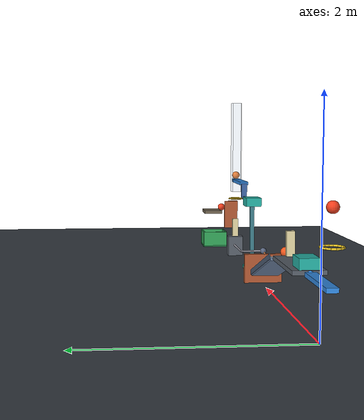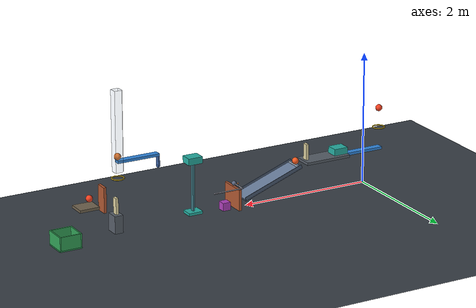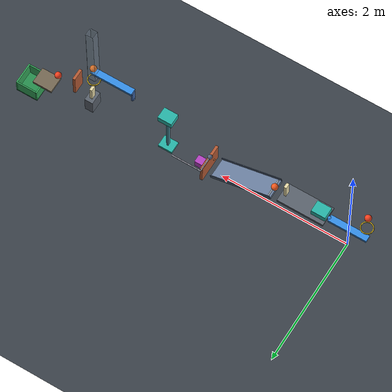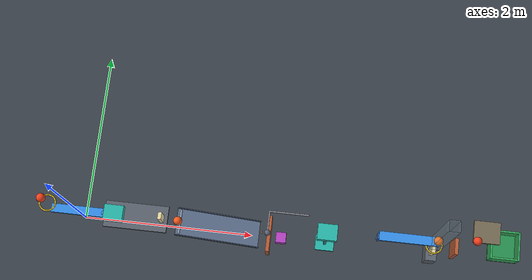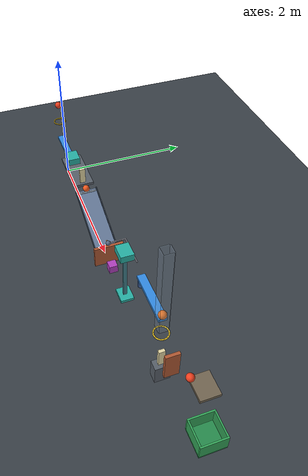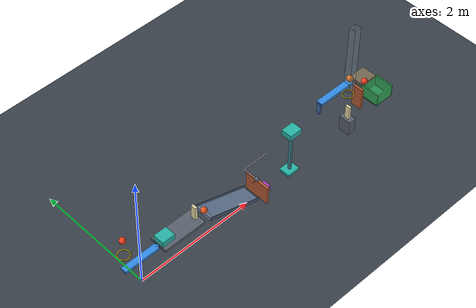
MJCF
<mujoco model="revised_gravity_chain">
  <compiler angle="degree" autolimits="true"/>
  <option timestep="0.002" gravity="0 0 -9.81" integrator="implicitfast" iterations="100"/>
  <size njmax="3000" nconmax="800"/>

  <!-- The start keyframe uses default positions and zero velocities. -->
  <!-- Contact damping ratio 0.716 approximates restitution 0.04. -->
  <!-- Constant assist torques are initially restrained by gravity or contact. -->

  <worldbody>
    <light name="main_light" pos="2 -3 6" dir="0 0 -1" diffuse="0.8 0.8 0.8"/>
    <camera name="overview" pos="2.5 -7 3.2" xyaxes="1 0 0 0 0.35 0.94"/>
    <geom name="floor" type="plane" size="8 4 0.1" friction="0.72 0.005 0.0001" solref="0.008 0.716" solimp="0.95 0.99 0.001" rgba="0.22 0.25 0.28 1"/>

    <body name="ball1" pos="-0.27 0 1.12">
      <freejoint name="ball1_free"/>
      <geom name="ball1_geom" type="sphere" size="0.05" mass="0.20" friction="0.72 0.005 0.0001" solref="0.008 0.716" solimp="0.95 0.99 0.001" rgba="0.95 0.25 0.12 1"/>
    </body>

    <body name="ring1" pos="-0.27 0 0.82">
      <geom name="ring1_00" type="capsule" fromto="0.09 0 0 0.083149 0.034442 0" size="0.008270675" friction="0.72 0.005 0.0001" solref="0.008 0.716" rgba="0.95 0.8 0.15 1"/>
      <geom name="ring1_01" type="capsule" fromto="0.083149 0.034442 0 0.063640 0.063640 0" size="0.008270675" friction="0.72 0.005 0.0001" solref="0.008 0.716" rgba="0.95 0.8 0.15 1"/>
      <geom name="ring1_02" type="capsule" fromto="0.063640 0.063640 0 0.034442 0.083149 0" size="0.008270675" friction="0.72 0.005 0.0001" solref="0.008 0.716" rgba="0.95 0.8 0.15 1"/>
      <geom name="ring1_03" type="capsule" fromto="0.034442 0.083149 0 0 0.09 0" size="0.008270675" friction="0.72 0.005 0.0001" solref="0.008 0.716" rgba="0.95 0.8 0.15 1"/>
      <geom name="ring1_04" type="capsule" fromto="0 0.09 0 -0.034442 0.083149 0" size="0.008270675" friction="0.72 0.005 0.0001" solref="0.008 0.716" rgba="0.95 0.8 0.15 1"/>
      <geom name="ring1_05" type="capsule" fromto="-0.034442 0.083149 0 -0.063640 0.063640 0" size="0.008270675" friction="0.72 0.005 0.0001" solref="0.008 0.716" rgba="0.95 0.8 0.15 1"/>
      <geom name="ring1_06" type="capsule" fromto="-0.063640 0.063640 0 -0.083149 0.034442 0" size="0.008270675" friction="0.72 0.005 0.0001" solref="0.008 0.716" rgba="0.95 0.8 0.15 1"/>
      <geom name="ring1_07" type="capsule" fromto="-0.083149 0.034442 0 -0.09 0 0" size="0.008270675" friction="0.72 0.005 0.0001" solref="0.008 0.716" rgba="0.95 0.8 0.15 1"/>
      <geom name="ring1_08" type="capsule" fromto="-0.09 0 0 -0.083149 -0.034442 0" size="0.008270675" friction="0.72 0.005 0.0001" solref="0.008 0.716" rgba="0.95 0.8 0.15 1"/>
      <geom name="ring1_09" type="capsule" fromto="-0.083149 -0.034442 0 -0.063640 -0.063640 0" size="0.008270675" friction="0.72 0.005 0.0001" solref="0.008 0.716" rgba="0.95 0.8 0.15 1"/>
      <geom name="ring1_10" type="capsule" fromto="-0.063640 -0.063640 0 -0.034442 -0.083149 0" size="0.008270675" friction="0.72 0.005 0.0001" solref="0.008 0.716" rgba="0.95 0.8 0.15 1"/>
      <geom name="ring1_11" type="capsule" fromto="-0.034442 -0.083149 0 0 -0.09 0" size="0.008270675" friction="0.72 0.005 0.0001" solref="0.008 0.716" rgba="0.95 0.8 0.15 1"/>
      <geom name="ring1_12" type="capsule" fromto="0 -0.09 0 0.034442 -0.083149 0" size="0.008270675" friction="0.72 0.005 0.0001" solref="0.008 0.716" rgba="0.95 0.8 0.15 1"/>
      <geom name="ring1_13" type="capsule" fromto="0.034442 -0.083149 0 0.063640 -0.063640 0" size="0.008270675" friction="0.72 0.005 0.0001" solref="0.008 0.716" rgba="0.95 0.8 0.15 1"/>
      <geom name="ring1_14" type="capsule" fromto="0.063640 -0.063640 0 0.083149 -0.034442 0" size="0.008270675" friction="0.72 0.005 0.0001" solref="0.008 0.716" rgba="0.95 0.8 0.15 1"/>
      <geom name="ring1_15" type="capsule" fromto="0.083149 -0.034442 0 0.09 0 0" size="0.008270675" friction="0.72 0.005 0.0001" solref="0.008 0.716" rgba="0.95 0.8 0.15 1"/>
    </body>

    <body name="lever1" pos="0 0 0.50">
      <joint name="lever1_hinge" type="hinge" axis="0 -1 0" range="0 45" damping="0.04" solreflimit="0.004 1"/>
      <geom name="lever1_beam" type="box" size="0.30 0.05 0.02" mass="0.48" friction="0.72 0.005 0.0001" solref="0.008 0.716" rgba="0.2 0.55 0.9 1"/>
      <geom name="lever1_striker" type="sphere" pos="0.30 0 0" size="0.03" mass="0.02" friction="0.72 0.005 0.0001" solref="0.008 0.716" rgba="0.2 0.55 0.9 1"/>
    </body>

    <body name="stage1_support" pos="0.6825 0 0.508">
      <geom name="stage1_support_geom" type="box" size="0.3625 0.15 0.02" friction="0.72 0.005 0.0001" solref="0.008 0.716" rgba="0.35 0.38 0.42 1"/>
    </body>

    <body name="cart1" pos="0.435 0 0.58">
      <joint name="cart1_slide" type="slide" axis="1 0 0" range="0 0.85" damping="0.20"/>
      <geom name="cart1_geom" type="box" size="0.11 0.09 0.05" mass="0.50" friction="0.72 0.005 0.0001" solref="0.008 0.716" rgba="0.15 0.7 0.65 1"/>
    </body>

    <body name="domino1" pos="0.985 0 0.65">
      <freejoint name="domino1_free"/>
      <geom name="domino1_geom" type="box" size="0.02 0.04 0.12" mass="0.25" friction="0.72 0.005 0.0001" solref="0.008 0.716" rgba="0.9 0.85 0.65 1"/>
    </body>

    <body name="ball2" pos="1.164985 0 0.539">
      <freejoint name="ball2_free"/>
      <geom name="ball2_geom" type="sphere" size="0.05" mass="0.20" friction="0.72 0.005 0.0001" solref="0.008 0.716" solimp="0.95 0.99 0.001" rgba="0.95 0.35 0.12 1"/>
    </body>

    <body name="ramp1" pos="1.6126 0 0.306915" quat="0.984807753 0 0.173648178 0">
      <geom name="ramp1_deck" type="box" size="0.50 0.15 0.015" friction="0.72 0.005 0.0001" solref="0.008 0.716" rgba="0.4 0.48 0.6 1"/>
      <geom name="ramp1_release_bump" type="capsule" fromto="-0.46 -0.13 0.019 -0.46 0.13 0.019" size="0.012" friction="0.72 0.005 0.0001" solref="0.008 0.716" rgba="0.6 0.65 0.7 1"/>
      <geom name="ramp1_side_left" type="box" pos="0 -0.155 0.025" size="0.50 0.005 0.025" friction="0.72 0.005 0.0001" solref="0.008 0.716" rgba="0.3 0.36 0.45 1"/>
      <geom name="ramp1_side_right" type="box" pos="0 0.155 0.025" size="0.50 0.005 0.025" friction="0.72 0.005 0.0001" solref="0.008 0.716" rgba="0.3 0.36 0.45 1"/>
    </body>

    <body name="door1" pos="2.2076 0 0.02">
      <joint name="door1_hinge" type="hinge" axis="0 1 0" range="0 70" damping="0.04" solreflimit="0.004 1"/>
      <geom name="door1_panel" type="box" pos="0 0 0.16" size="0.02 0.21 0.16" mass="0.44" friction="0.72 0.005 0.0001" solref="0.008 0.716" rgba="0.7 0.35 0.2 1"/>
      <geom name="door1_bob_striker" type="sphere" pos="-0.08 0 0.34" size="0.012" mass="0.01" friction="0.72 0.005 0.0001" solref="0.008 0.716" rgba="0.75 0.45 0.25 1"/>
    </body>

    <!-- Offset shaft avoids the door/shaft interlock; the bob remains in the interaction plane. -->
    <body name="pendulum1" pos="2.6576 0 0.375">
      <joint name="pendulum1_hinge" type="hinge" axis="0 -1 0" range="0 38" damping="0.04" solreflimit="0.004 1"/>
      <geom name="pendulum1_rod" type="capsule" fromto="-0.009 0.25 0 -0.465 0.25 0" size="0.009" mass="0.04" friction="0.72 0.005 0.0001" solref="0.008 0.716" rgba="0.65 0.65 0.7 1"/>
      <geom name="pendulum1_end_connector" type="capsule" fromto="-0.465 0 0 -0.465 0.25 0" size="0.009" mass="0.01" friction="0.72 0.005 0.0001" solref="0.008 0.716" rgba="0.65 0.65 0.7 1"/>
      <geom name="pendulum1_bob" type="sphere" pos="-0.465 0 0" size="0.035" mass="0.30" friction="0.72 0.005 0.0001" solref="0.008 0.716" rgba="0.35 0.4 0.5 1"/>
    </body>

    <body name="block1" pos="2.3476 0 0.0605">
      <freejoint name="block1_free"/>
      <geom name="block1_geom" type="box" size="0.06 0.06 0.06" mass="0.35" friction="0.72 0.005 0.0001" solref="0.008 0.716" rgba="0.7 0.25 0.75 1"/>
    </body>

    <!-- The light mast connects the elevated carriage to its floor-level impact toe. -->
    <body name="cart2" pos="2.8676 0 0.86">
      <joint name="cart2_slide" type="slide" axis="1 0 0" range="0 0.90" damping="0.20"/>
      <geom name="cart2_carriage" type="box" size="0.11 0.09 0.05" mass="0.45" friction="0.72 0.005 0.0001" solref="0.008 0.716" rgba="0.15 0.7 0.65 1"/>
      <geom name="cart2_mast" type="box" pos="0 0 -0.415" size="0.015 0.025 0.365" mass="0.04" friction="0.72 0.005 0.0001" solref="0.008 0.716" rgba="0.25 0.5 0.55 1"/>
      <geom name="cart2_toe" type="box" pos="0 0 -0.80" size="0.11 0.09 0.02" mass="0.01" friction="0.72 0.005 0.0001" solref="0.008 0.716" rgba="0.15 0.7 0.65 1"/>
    </body>

    <body name="seesaw1" pos="3.7476 0 1.04">
      <joint name="seesaw1_hinge" type="hinge" axis="0 -1 0" range="0 42" damping="0.04" solreflimit="0.004 1"/>
      <geom name="seesaw1_beam" type="box" size="0.325 0.05 0.02" mass="0.52" friction="0.72 0.005 0.0001" solref="0.008 0.716" rgba="0.2 0.55 0.9 1"/>
      <geom name="seesaw1_trigger_arm" type="box" pos="-0.325 0 -0.09" size="0.012 0.035 0.09" mass="0.02" friction="0.72 0.005 0.0001" solref="0.008 0.716" rgba="0.25 0.4 0.65 1"/>
      <geom name="seesaw1_trigger_tip" type="sphere" pos="-0.325 0 -0.18" size="0.025" mass="0.01" friction="0.72 0.005 0.0001" solref="0.008 0.716" rgba="0.25 0.4 0.65 1"/>
    </body>

    <body name="ball3" pos="4.0576 0 1.11">
      <freejoint name="ball3_free"/>
      <geom name="ball3_geom" type="sphere" size="0.05" mass="0.20" contype="9" conaffinity="9" friction="0.72 0.005 0.0001" solref="0.008 0.716" solimp="0.95 0.99 0.001" rgba="0.95 0.45 0.1 1"/>
    </body>

    <body name="ring2" pos="4.0576 0 0.79">
      <geom name="ring2_00" type="capsule" fromto="0.09 0 0 0.083149 0.034442 0" size="0.008270675" friction="0.72 0.005 0.0001" solref="0.008 0.716" rgba="0.95 0.8 0.15 1"/>
      <geom name="ring2_01" type="capsule" fromto="0.083149 0.034442 0 0.063640 0.063640 0" size="0.008270675" friction="0.72 0.005 0.0001" solref="0.008 0.716" rgba="0.95 0.8 0.15 1"/>
      <geom name="ring2_02" type="capsule" fromto="0.063640 0.063640 0 0.034442 0.083149 0" size="0.008270675" friction="0.72 0.005 0.0001" solref="0.008 0.716" rgba="0.95 0.8 0.15 1"/>
      <geom name="ring2_03" type="capsule" fromto="0.034442 0.083149 0 0 0.09 0" size="0.008270675" friction="0.72 0.005 0.0001" solref="0.008 0.716" rgba="0.95 0.8 0.15 1"/>
      <geom name="ring2_04" type="capsule" fromto="0 0.09 0 -0.034442 0.083149 0" size="0.008270675" friction="0.72 0.005 0.0001" solref="0.008 0.716" rgba="0.95 0.8 0.15 1"/>
      <geom name="ring2_05" type="capsule" fromto="-0.034442 0.083149 0 -0.063640 0.063640 0" size="0.008270675" friction="0.72 0.005 0.0001" solref="0.008 0.716" rgba="0.95 0.8 0.15 1"/>
      <geom name="ring2_06" type="capsule" fromto="-0.063640 0.063640 0 -0.083149 0.034442 0" size="0.008270675" friction="0.72 0.005 0.0001" solref="0.008 0.716" rgba="0.95 0.8 0.15 1"/>
      <geom name="ring2_07" type="capsule" fromto="-0.083149 0.034442 0 -0.09 0 0" size="0.008270675" friction="0.72 0.005 0.0001" solref="0.008 0.716" rgba="0.95 0.8 0.15 1"/>
      <geom name="ring2_08" type="capsule" fromto="-0.09 0 0 -0.083149 -0.034442 0" size="0.008270675" friction="0.72 0.005 0.0001" solref="0.008 0.716" rgba="0.95 0.8 0.15 1"/>
      <geom name="ring2_09" type="capsule" fromto="-0.083149 -0.034442 0 -0.063640 -0.063640 0" size="0.008270675" friction="0.72 0.005 0.0001" solref="0.008 0.716" rgba="0.95 0.8 0.15 1"/>
      <geom name="ring2_10" type="capsule" fromto="-0.063640 -0.063640 0 -0.034442 -0.083149 0" size="0.008270675" friction="0.72 0.005 0.0001" solref="0.008 0.716" rgba="0.95 0.8 0.15 1"/>
      <geom name="ring2_11" type="capsule" fromto="-0.034442 -0.083149 0 0 -0.09 0" size="0.008270675" friction="0.72 0.005 0.0001" solref="0.008 0.716" rgba="0.95 0.8 0.15 1"/>
      <geom name="ring2_12" type="capsule" fromto="0 -0.09 0 0.034442 -0.083149 0" size="0.008270675" friction="0.72 0.005 0.0001" solref="0.008 0.716" rgba="0.95 0.8 0.15 1"/>
      <geom name="ring2_13" type="capsule" fromto="0.034442 -0.083149 0 0.063640 -0.063640 0" size="0.008270675" friction="0.72 0.005 0.0001" solref="0.008 0.716" rgba="0.95 0.8 0.15 1"/>
      <geom name="ring2_14" type="capsule" fromto="0.063640 -0.063640 0 0.083149 -0.034442 0" size="0.008270675" friction="0.72 0.005 0.0001" solref="0.008 0.716" rgba="0.95 0.8 0.15 1"/>
      <geom name="ring2_15" type="capsule" fromto="0.083149 -0.034442 0 0.09 0 0" size="0.008270675" friction="0.72 0.005 0.0001" solref="0.008 0.716" rgba="0.95 0.8 0.15 1"/>
    </body>

    <!-- Ball-only guides stop above the ring and do not narrow its aperture. -->
    <body name="ball3_vertical_guide" pos="4.0576 0 1.49">
      <geom name="ball3_vertical_guide_xminus" type="box" pos="-0.058 0 0" size="0.006 0.053 0.60" contype="8" conaffinity="8" friction="0.72 0.005 0.0001" solref="0.008 0.716" rgba="0.7 0.8 0.9 0.18"/>
      <geom name="ball3_vertical_guide_xplus" type="box" pos="0.058 0 0" size="0.006 0.053 0.60" contype="8" conaffinity="8" friction="0.72 0.005 0.0001" solref="0.008 0.716" rgba="0.7 0.8 0.9 0.18"/>
      <geom name="ball3_vertical_guide_yminus" type="box" pos="0 -0.058 0" size="0.053 0.006 0.60" contype="8" conaffinity="8" friction="0.72 0.005 0.0001" solref="0.008 0.716" rgba="0.7 0.8 0.9 0.18"/>
      <geom name="ball3_vertical_guide_yplus" type="box" pos="0 0.058 0" size="0.053 0.006 0.60" contype="8" conaffinity="8" friction="0.72 0.005 0.0001" solref="0.008 0.716" rgba="0.7 0.8 0.9 0.18"/>
    </body>

    <!-- Ball3 hits 0.020 m outside the left top edge, producing a rightward tipping impulse. -->
    <!-- Top height gives first nominal contact at ball-center z=0.55, 0.24 m below ring2. -->
    <body name="domino2_support" pos="4.1026 0 0.1320871215">
      <geom name="domino2_support_geom" type="box" size="0.065 0.10 0.1320871215" friction="0.72 0.005 0.0001" solref="0.008 0.716" rgba="0.35 0.38 0.42 1"/>
    </body>

    <body name="domino2" pos="4.0976 0 0.384174243">
      <freejoint name="domino2_free"/>
      <geom name="domino2_geom" type="box" size="0.02 0.04 0.12" mass="0.25" friction="0.72 0.005 0.0001" solref="0.008 0.716" rgba="0.9 0.85 0.65 1"/>
    </body>

    <!-- Initial gap: flap left face 4.2976 minus domino right face 4.1176 equals 0.18 m. -->
    <body name="flap1" pos="4.3176 0.025 0.35">
      <joint name="flap1_hinge" type="hinge" axis="0 1 0" range="0 60" damping="0.04" solreflimit="0.004 1"/>
      <geom name="flap1_panel" type="box" pos="0 0 0.19" size="0.02 0.09 0.19" mass="0.28" friction="0.72 0.005 0.0001" solref="0.008 0.716" rgba="0.7 0.35 0.2 1"/>
    </body>

    <body name="shelf1" pos="4.6776 0.245 0.55">
      <geom name="shelf1_geom" type="box" size="0.15 0.125 0.02" friction="0.72 0.005 0.0001" solref="0.008 0.716" rgba="0.45 0.4 0.32 1"/>
    </body>

    <body name="ball4" pos="4.5676 0.125 0.62">
      <freejoint name="ball4_free"/>
      <geom name="ball4_geom" type="sphere" size="0.05" mass="0.20" friction="0.72 0.005 0.0001" solref="0.008 0.716" solimp="0.95 0.99 0.001" rgba="0.95 0.25 0.12 1"/>
    </body>

    <!-- Shelf top is 0.57; cup interior floor is 0.02: vertical separation 0.55 m. -->
    <body name="cup1" pos="4.9676 0.18 0">
      <geom name="cup1_base" type="box" pos="0 0 0.01" size="0.17 0.17 0.01" friction="0.72 0.005 0.0001" solref="0.008 0.716" solimp="0.95 0.99 0.001" rgba="0.15 0.55 0.3 1"/>
      <geom name="cup1_wall_xminus" type="box" pos="-0.16 0 0.12" size="0.01 0.17 0.10" friction="0.72 0.005 0.0001" solref="0.008 0.716" solimp="0.95 0.99 0.001" rgba="0.2 0.65 0.35 1"/>
      <geom name="cup1_wall_xplus" type="box" pos="0.16 0 0.12" size="0.01 0.17 0.10" friction="0.72 0.005 0.0001" solref="0.008 0.716" solimp="0.95 0.99 0.001" rgba="0.2 0.65 0.35 1"/>
      <geom name="cup1_wall_yminus" type="box" pos="0 -0.16 0.12" size="0.15 0.01 0.10" friction="0.72 0.005 0.0001" solref="0.008 0.716" solimp="0.95 0.99 0.001" rgba="0.2 0.65 0.35 1"/>
      <geom name="cup1_wall_yplus" type="box" pos="0 0.16 0.12" size="0.15 0.01 0.10" friction="0.72 0.005 0.0001" solref="0.008 0.716" solimp="0.95 0.99 0.001" rgba="0.2 0.65 0.35 1"/>
    </body>
  </worldbody>

  <actuator>
    <motor name="lever1_assist" joint="lever1_hinge" gear="1" ctrllimited="true" ctrlrange="0 0.04"/>
    <motor name="door1_assist" joint="door1_hinge" gear="1" ctrllimited="true" ctrlrange="0 0.02"/>
    <motor name="pendulum1_assist" joint="pendulum1_hinge" gear="1" ctrllimited="true" ctrlrange="0 0.25"/>
    <motor name="seesaw1_counterbalance" joint="seesaw1_hinge" gear="1" ctrllimited="true" ctrlrange="0 0.49"/>
  </actuator>

  <keyframe>
    <key name="start" ctrl="0.04 0.02 0.25 0.49"/>
  </keyframe>
</mujoco>
